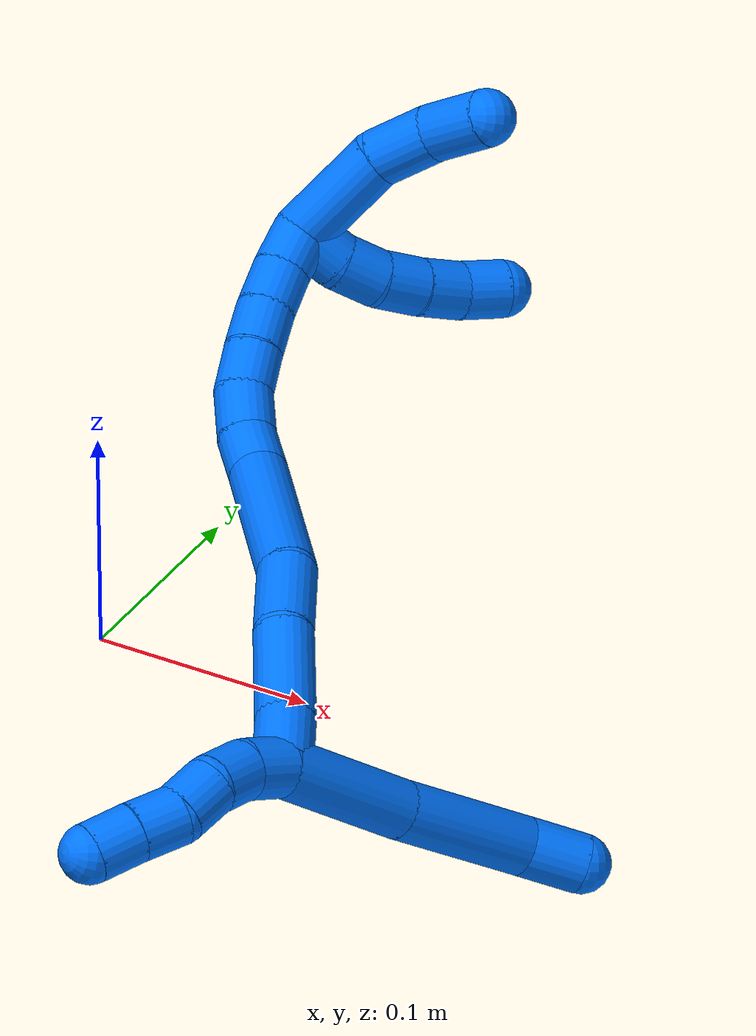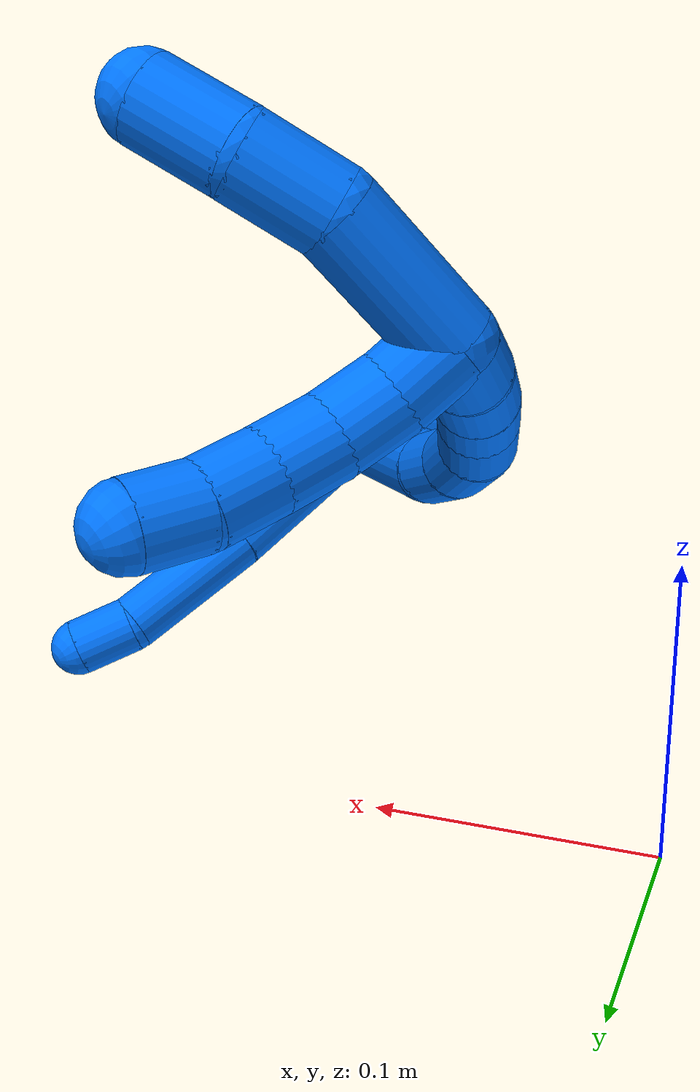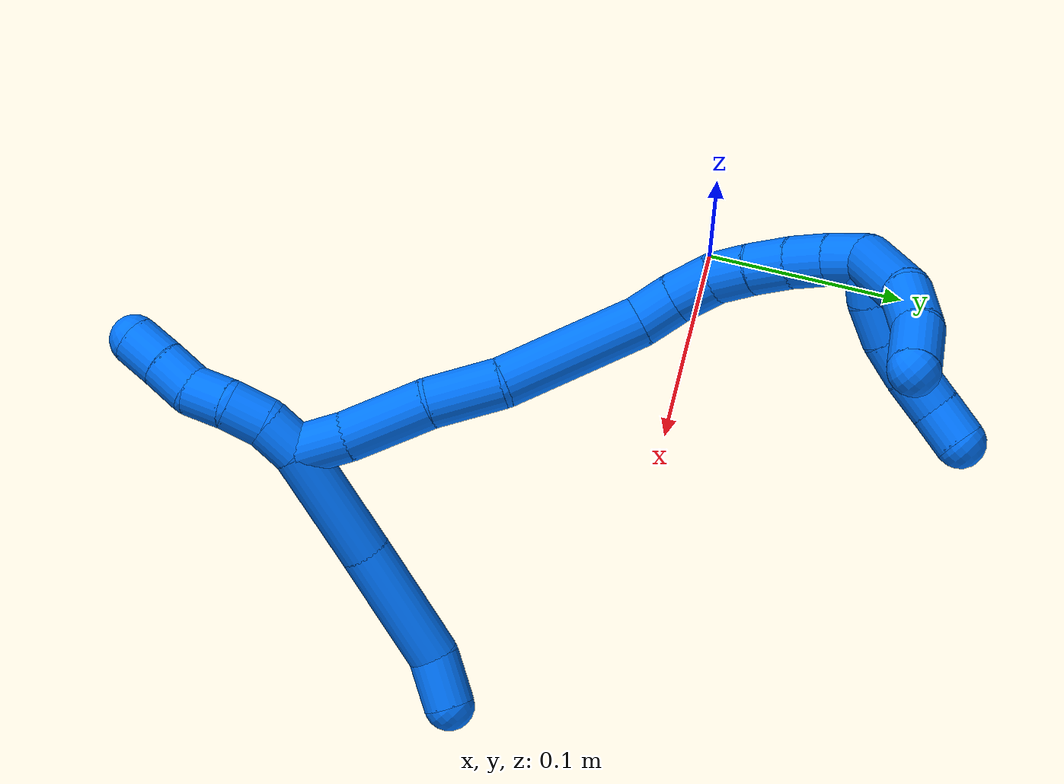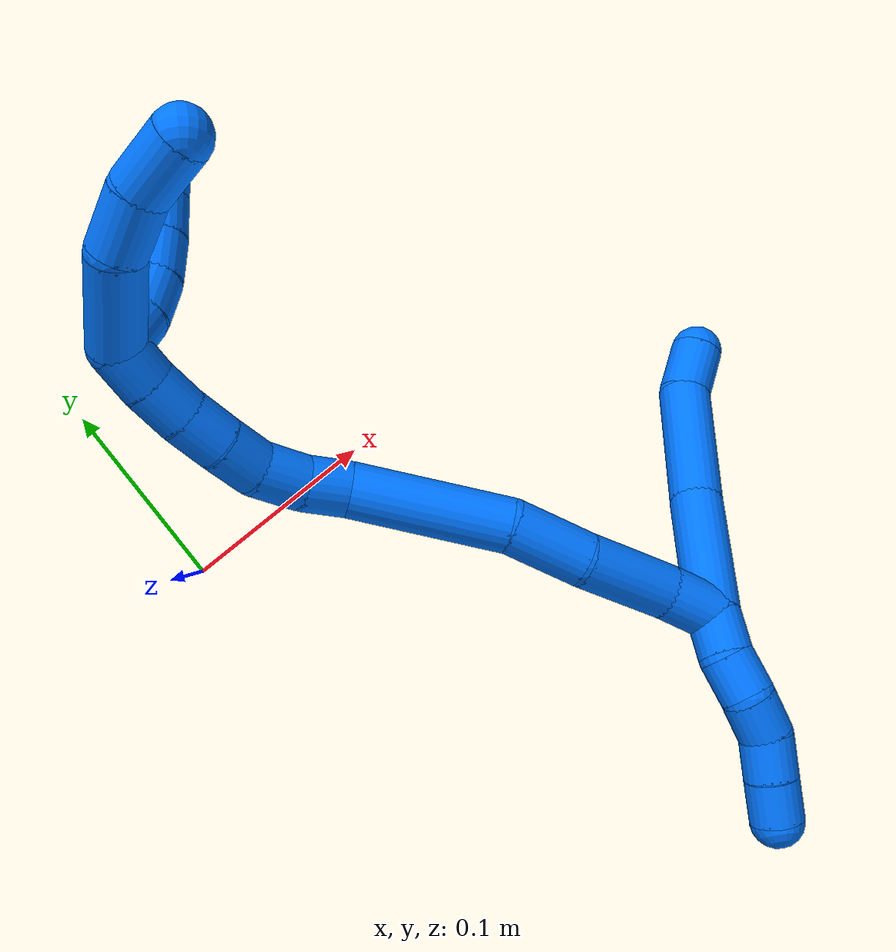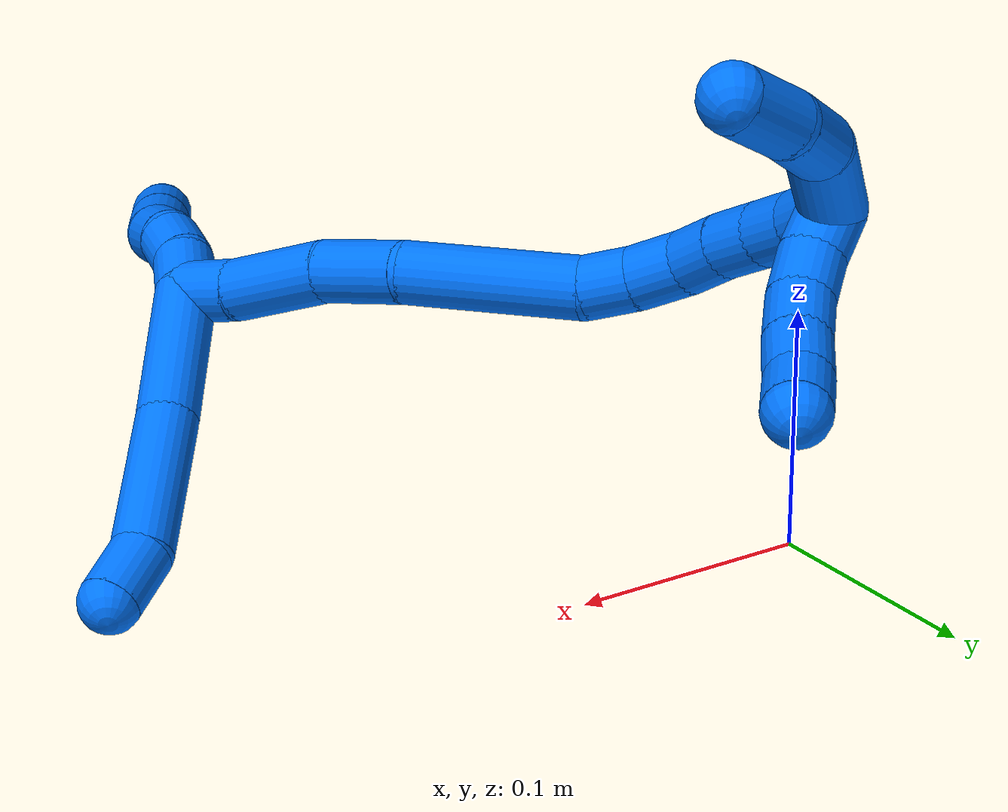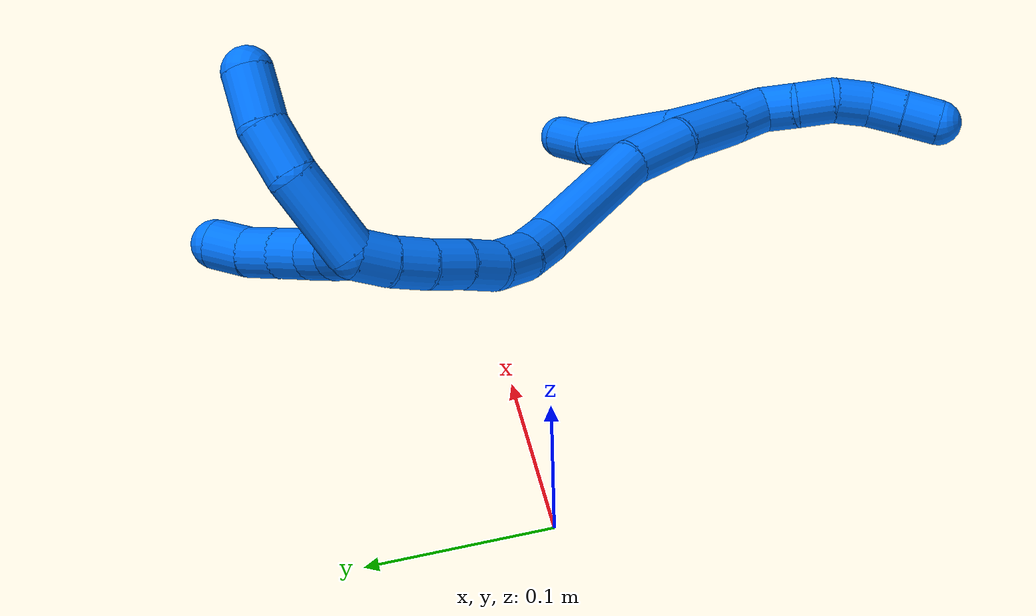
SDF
<sdf version="1.7">
 <world name="default">
  <model name="14">
   <static>0</static>
   <link name="14">
    <collision name="collision-cylinder-e_1_2_8">
     <pose>-0.004023 -0.007659 -0.029432 2.88703 -0.131528 -0.950572</pose>
     <geometry><cylinder><radius>0.0125</radius><length>0.061355</length></cylinder></geometry>
     <surface>
      <friction><ode><mu>1.16</mu><mu2>1.16</mu2><slip1>0</slip1><slip2>0</slip2></ode></friction>
      <contact><ode><kp>1e+06</kp><kd>1</kd><max_vel>0</max_vel><min_depth>0.001</min_depth></ode></contact>
     </surface>
    </collision>
    <visual name="visual-cylinder-e_1_2_8">
     <pose>-0.004023 -0.007659 -0.029432 2.88703 -0.131528 -0.950572</pose>
     <geometry><cylinder><radius>0.0125</radius><length>0.061355</length></cylinder></geometry>
     <material><ambient>0 0.462745 1 1</ambient></material>
    </visual>
    <collision name="collision-cylinder-e_2_8_9">
     <pose>-0.010321 -0.022529 -0.089355 2.90933 -0.072448 -0.602413</pose>
     <geometry><cylinder><radius>0.0125</radius><length>0.062827</length></cylinder></geometry>
     <surface>
      <friction><ode><mu>1.16</mu><mu2>1.16</mu2><slip1>0</slip1><slip2>0</slip2></ode></friction>
      <contact><ode><kp>1e+06</kp><kd>1</kd><max_vel>0</max_vel><min_depth>0.001</min_depth></ode></contact>
     </surface>
    </collision>
    <visual name="visual-cylinder-e_2_8_9">
     <pose>-0.010321 -0.022529 -0.089355 2.90933 -0.072448 -0.602413</pose>
     <geometry><cylinder><radius>0.0125</radius><length>0.062827</length></cylinder></geometry>
     <material><ambient>0 0.462745 1 1</ambient></material>
    </visual>
    <collision name="collision-cylinder-e_3_9_6">
     <pose>-0.009864 -0.03459 -0.131492 2.74709 0.213121 0.982867</pose>
     <geometry><cylinder><radius>0.0125</radius><length>0.025818</length></cylinder></geometry>
     <surface>
      <friction><ode><mu>1.16</mu><mu2>1.16</mu2><slip1>0</slip1><slip2>0</slip2></ode></friction>
      <contact><ode><kp>1e+06</kp><kd>1</kd><max_vel>0</max_vel><min_depth>0.001</min_depth></ode></contact>
     </surface>
    </collision>
    <visual name="visual-cylinder-e_3_9_6">
     <pose>-0.009864 -0.03459 -0.131492 2.74709 0.213121 0.982867</pose>
     <geometry><cylinder><radius>0.0125</radius><length>0.025818</length></cylinder></geometry>
     <material><ambient>0 0.462745 1 1</ambient></material>
    </visual>
    <collision name="collision-cylinder-e_1_2_10">
     <pose>0.00055 -0.000704 0.00996 0.070593 0.055041 0.001944</pose>
     <geometry><cylinder><radius>0.0125</radius><length>0.02</length></cylinder></geometry>
     <surface>
      <friction><ode><mu>1.16</mu><mu2>1.16</mu2><slip1>0</slip1><slip2>0</slip2></ode></friction>
      <contact><ode><kp>1e+06</kp><kd>1</kd><max_vel>0</max_vel><min_depth>0.001</min_depth></ode></contact>
     </surface>
    </collision>
    <visual name="visual-cylinder-e_1_2_10">
     <pose>0.00055 -0.000704 0.00996 0.070593 0.055041 0.001944</pose>
     <geometry><cylinder><radius>0.0125</radius><length>0.02</length></cylinder></geometry>
     <material><ambient>0 0.462745 1 1</ambient></material>
    </visual>
    <collision name="collision-cylinder-e_2_10_11">
     <pose>0.001973 -0.004966 0.029225 0.365197 0.087366 0.016142</pose>
     <geometry><cylinder><radius>0.0125</radius><length>0.02</length></cylinder></geometry>
     <surface>
      <friction><ode><mu>1.16</mu><mu2>1.16</mu2><slip1>0</slip1><slip2>0</slip2></ode></friction>
      <contact><ode><kp>1e+06</kp><kd>1</kd><max_vel>0</max_vel><min_depth>0.001</min_depth></ode></contact>
     </surface>
    </collision>
    <visual name="visual-cylinder-e_2_10_11">
     <pose>0.001973 -0.004966 0.029225 0.365197 0.087366 0.016142</pose>
     <geometry><cylinder><radius>0.0125</radius><length>0.02</length></cylinder></geometry>
     <material><ambient>0 0.462745 1 1</ambient></material>
    </visual>
    <collision name="collision-cylinder-e_3_11_12">
     <pose>0.001306 -0.014092 0.046693 0.598601 -0.154561 -0.047779</pose>
     <geometry><cylinder><radius>0.0125</radius><length>0.02</length></cylinder></geometry>
     <surface>
      <friction><ode><mu>1.16</mu><mu2>1.16</mu2><slip1>0</slip1><slip2>0</slip2></ode></friction>
      <contact><ode><kp>1e+06</kp><kd>1</kd><max_vel>0</max_vel><min_depth>0.001</min_depth></ode></contact>
     </surface>
    </collision>
    <visual name="visual-cylinder-e_3_11_12">
     <pose>0.001306 -0.014092 0.046693 0.598601 -0.154561 -0.047779</pose>
     <geometry><cylinder><radius>0.0125</radius><length>0.02</length></cylinder></geometry>
     <material><ambient>0 0.462745 1 1</ambient></material>
    </visual>
    <collision name="collision-cylinder-e_4_12_13">
     <pose>-0.003203 -0.022309 0.064029 0.281163 -0.301473 -0.042982</pose>
     <geometry><cylinder><radius>0.0125</radius><length>0.02</length></cylinder></geometry>
     <surface>
      <friction><ode><mu>1.16</mu><mu2>1.16</mu2><slip1>0</slip1><slip2>0</slip2></ode></friction>
      <contact><ode><kp>1e+06</kp><kd>1</kd><max_vel>0</max_vel><min_depth>0.001</min_depth></ode></contact>
     </surface>
    </collision>
    <visual name="visual-cylinder-e_4_12_13">
     <pose>-0.003203 -0.022309 0.064029 0.281163 -0.301473 -0.042982</pose>
     <geometry><cylinder><radius>0.0125</radius><length>0.02</length></cylinder></geometry>
     <material><ambient>0 0.462745 1 1</ambient></material>
    </visual>
    <collision name="collision-cylinder-e_5_13_5">
     <pose>-0.009353 -0.028036 0.082171 0.330581 -0.323661 -0.054454</pose>
     <geometry><cylinder><radius>0.0125</radius><length>0.02</length></cylinder></geometry>
     <surface>
      <friction><ode><mu>1.16</mu><mu2>1.16</mu2><slip1>0</slip1><slip2>0</slip2></ode></friction>
      <contact><ode><kp>1e+06</kp><kd>1</kd><max_vel>0</max_vel><min_depth>0.001</min_depth></ode></contact>
     </surface>
    </collision>
    <visual name="visual-cylinder-e_5_13_5">
     <pose>-0.009353 -0.028036 0.082171 0.330581 -0.323661 -0.054454</pose>
     <geometry><cylinder><radius>0.0125</radius><length>0.02</length></cylinder></geometry>
     <material><ambient>0 0.462745 1 1</ambient></material>
    </visual>
    <collision name="collision-cylinder-e_1_2_14">
     <pose>-0.003348 0.010966 -0.005509 -2.03632 -0.266345 0.427784</pose>
     <geometry><cylinder><radius>0.0125</radius><length>0.025442</length></cylinder></geometry>
     <surface>
      <friction><ode><mu>1.16</mu><mu2>1.16</mu2><slip1>0</slip1><slip2>0</slip2></ode></friction>
      <contact><ode><kp>1e+06</kp><kd>1</kd><max_vel>0</max_vel><min_depth>0.001</min_depth></ode></contact>
     </surface>
    </collision>
    <visual name="visual-cylinder-e_1_2_14">
     <pose>-0.003348 0.010966 -0.005509 -2.03632 -0.266345 0.427784</pose>
     <geometry><cylinder><radius>0.0125</radius><length>0.025442</length></cylinder></geometry>
     <material><ambient>0 0.462745 1 1</ambient></material>
    </visual>
    <collision name="collision-cylinder-e_2_14_15">
     <pose>-0.010914 0.042127 -0.018091 -1.90768 -0.194598 0.273495</pose>
     <geometry><cylinder><radius>0.0125</radius><length>0.043618</length></cylinder></geometry>
     <surface>
      <friction><ode><mu>1.16</mu><mu2>1.16</mu2><slip1>0</slip1><slip2>0</slip2></ode></friction>
      <contact><ode><kp>1e+06</kp><kd>1</kd><max_vel>0</max_vel><min_depth>0.001</min_depth></ode></contact>
     </surface>
    </collision>
    <visual name="visual-cylinder-e_2_14_15">
     <pose>-0.010914 0.042127 -0.018091 -1.90768 -0.194598 0.273495</pose>
     <geometry><cylinder><radius>0.0125</radius><length>0.043618</length></cylinder></geometry>
     <material><ambient>0 0.462745 1 1</ambient></material>
    </visual>
    <collision name="collision-cylinder-e_3_15_16">
     <pose>-0.020578 0.077506 -0.033252 -2.06027 -0.306638 0.503882</pose>
     <geometry><cylinder><radius>0.0125</radius><length>0.036092</length></cylinder></geometry>
     <surface>
      <friction><ode><mu>1.16</mu><mu2>1.16</mu2><slip1>0</slip1><slip2>0</slip2></ode></friction>
      <contact><ode><kp>1e+06</kp><kd>1</kd><max_vel>0</max_vel><min_depth>0.001</min_depth></ode></contact>
     </surface>
    </collision>
    <visual name="visual-cylinder-e_3_15_16">
     <pose>-0.020578 0.077506 -0.033252 -2.06027 -0.306638 0.503882</pose>
     <geometry><cylinder><radius>0.0125</radius><length>0.036092</length></cylinder></geometry>
     <material><ambient>0 0.462745 1 1</ambient></material>
    </visual>
    <collision name="collision-cylinder-e_4_16_17">
     <pose>-0.044562 0.121299 -0.05312 -1.96137 -0.539792 0.783464</pose>
     <geometry><cylinder><radius>0.0125</radius><length>0.072133</length></cylinder></geometry>
     <surface>
      <friction><ode><mu>1.16</mu><mu2>1.16</mu2><slip1>0</slip1><slip2>0</slip2></ode></friction>
      <contact><ode><kp>1e+06</kp><kd>1</kd><max_vel>0</max_vel><min_depth>0.001</min_depth></ode></contact>
     </surface>
    </collision>
    <visual name="visual-cylinder-e_4_16_17">
     <pose>-0.044562 0.121299 -0.05312 -1.96137 -0.539792 0.783464</pose>
     <geometry><cylinder><radius>0.0125</radius><length>0.072133</length></cylinder></geometry>
     <material><ambient>0 0.462745 1 1</ambient></material>
    </visual>
    <collision name="collision-cylinder-e_5_17_18">
     <pose>-0.06665 0.159284 -0.066512 -1.74118 -0.357227 0.42212</pose>
     <geometry><cylinder><radius>0.0125</radius><length>0.020312</length></cylinder></geometry>
     <surface>
      <friction><ode><mu>1.16</mu><mu2>1.16</mu2><slip1>0</slip1><slip2>0</slip2></ode></friction>
      <contact><ode><kp>1e+06</kp><kd>1</kd><max_vel>0</max_vel><min_depth>0.001</min_depth></ode></contact>
     </surface>
    </collision>
    <visual name="visual-cylinder-e_5_17_18">
     <pose>-0.06665 0.159284 -0.066512 -1.74118 -0.357227 0.42212</pose>
     <geometry><cylinder><radius>0.0125</radius><length>0.020312</length></cylinder></geometry>
     <material><ambient>0 0.462745 1 1</ambient></material>
    </visual>
    <collision name="collision-cylinder-e_6_18_19">
     <pose>-0.071837 0.179313 -0.070767 -1.81388 -0.148005 0.188973</pose>
     <geometry><cylinder><radius>0.0125</radius><length>0.022192</length></cylinder></geometry>
     <surface>
      <friction><ode><mu>1.16</mu><mu2>1.16</mu2><slip1>0</slip1><slip2>0</slip2></ode></friction>
      <contact><ode><kp>1e+06</kp><kd>1</kd><max_vel>0</max_vel><min_depth>0.001</min_depth></ode></contact>
     </surface>
    </collision>
    <visual name="visual-cylinder-e_6_18_19">
     <pose>-0.071837 0.179313 -0.070767 -1.81388 -0.148005 0.188973</pose>
     <geometry><cylinder><radius>0.0125</radius><length>0.022192</length></cylinder></geometry>
     <material><ambient>0 0.462745 1 1</ambient></material>
    </visual>
    <collision name="collision-cylinder-e_7_19_20">
     <pose>-0.072339 0.199142 -0.07736 -1.97741 0.11307 -0.171559</pose>
     <geometry><cylinder><radius>0.0125</radius><length>0.020111</length></cylinder></geometry>
     <surface>
      <friction><ode><mu>1.16</mu><mu2>1.16</mu2><slip1>0</slip1><slip2>0</slip2></ode></friction>
      <contact><ode><kp>1e+06</kp><kd>1</kd><max_vel>0</max_vel><min_depth>0.001</min_depth></ode></contact>
     </surface>
    </collision>
    <visual name="visual-cylinder-e_7_19_20">
     <pose>-0.072339 0.199142 -0.07736 -1.97741 0.11307 -0.171559</pose>
     <geometry><cylinder><radius>0.0125</radius><length>0.020111</length></cylinder></geometry>
     <material><ambient>0 0.462745 1 1</ambient></material>
    </visual>
    <collision name="collision-cylinder-e_8_20_21">
     <pose>-0.070569 0.21716 -0.085986 -2.05714 0.063505 -0.105348</pose>
     <geometry><cylinder><radius>0.0125</radius><length>0.020043</length></cylinder></geometry>
     <surface>
      <friction><ode><mu>1.16</mu><mu2>1.16</mu2><slip1>0</slip1><slip2>0</slip2></ode></friction>
      <contact><ode><kp>1e+06</kp><kd>1</kd><max_vel>0</max_vel><min_depth>0.001</min_depth></ode></contact>
     </surface>
    </collision>
    <visual name="visual-cylinder-e_8_20_21">
     <pose>-0.070569 0.21716 -0.085986 -2.05714 0.063505 -0.105348</pose>
     <geometry><cylinder><radius>0.0125</radius><length>0.020043</length></cylinder></geometry>
     <material><ambient>0 0.462745 1 1</ambient></material>
    </visual>
    <collision name="collision-cylinder-e_9_21_22">
     <pose>-0.068622 0.234459 -0.095873 -2.12305 0.131125 -0.234084</pose>
     <geometry><cylinder><radius>0.0125</radius><length>0.020041</length></cylinder></geometry>
     <surface>
      <friction><ode><mu>1.16</mu><mu2>1.16</mu2><slip1>0</slip1><slip2>0</slip2></ode></friction>
      <contact><ode><kp>1e+06</kp><kd>1</kd><max_vel>0</max_vel><min_depth>0.001</min_depth></ode></contact>
     </surface>
    </collision>
    <visual name="visual-cylinder-e_9_21_22">
     <pose>-0.068622 0.234459 -0.095873 -2.12305 0.131125 -0.234084</pose>
     <geometry><cylinder><radius>0.0125</radius><length>0.020041</length></cylinder></geometry>
     <material><ambient>0 0.462745 1 1</ambient></material>
    </visual>
    <collision name="collision-cylinder-e_10_22_1">
     <pose>-0.064766 0.250935 -0.106507 -2.16544 0.25722 -0.477864</pose>
     <geometry><cylinder><radius>0.0125</radius><length>0.020016</length></cylinder></geometry>
     <surface>
      <friction><ode><mu>1.16</mu><mu2>1.16</mu2><slip1>0</slip1><slip2>0</slip2></ode></friction>
      <contact><ode><kp>1e+06</kp><kd>1</kd><max_vel>0</max_vel><min_depth>0.001</min_depth></ode></contact>
     </surface>
    </collision>
    <visual name="visual-cylinder-e_10_22_1">
     <pose>-0.064766 0.250935 -0.106507 -2.16544 0.25722 -0.477864</pose>
     <geometry><cylinder><radius>0.0125</radius><length>0.020016</length></cylinder></geometry>
     <material><ambient>0 0.462745 1 1</ambient></material>
    </visual>
    <collision name="collision-cylinder-e_1_1_23">
     <pose>-0.062586 0.252899 -0.119881 2.49098 -0.036617 -0.108469</pose>
     <geometry><cylinder><radius>0.0125</radius><length>0.02</length></cylinder></geometry>
     <surface>
      <friction><ode><mu>1.16</mu><mu2>1.16</mu2><slip1>0</slip1><slip2>0</slip2></ode></friction>
      <contact><ode><kp>1e+06</kp><kd>1</kd><max_vel>0</max_vel><min_depth>0.001</min_depth></ode></contact>
     </surface>
    </collision>
    <visual name="visual-cylinder-e_1_1_23">
     <pose>-0.062586 0.252899 -0.119881 2.49098 -0.036617 -0.108469</pose>
     <geometry><cylinder><radius>0.0125</radius><length>0.02</length></cylinder></geometry>
     <material><ambient>0 0.462745 1 1</ambient></material>
    </visual>
    <collision name="collision-cylinder-e_2_23_24">
     <pose>-0.062789 0.243022 -0.137071 2.7491 0.016368 0.082288</pose>
     <geometry><cylinder><radius>0.0125</radius><length>0.02</length></cylinder></geometry>
     <surface>
      <friction><ode><mu>1.16</mu><mu2>1.16</mu2><slip1>0</slip1><slip2>0</slip2></ode></friction>
      <contact><ode><kp>1e+06</kp><kd>1</kd><max_vel>0</max_vel><min_depth>0.001</min_depth></ode></contact>
     </surface>
    </collision>
    <visual name="visual-cylinder-e_2_23_24">
     <pose>-0.062789 0.243022 -0.137071 2.7491 0.016368 0.082288</pose>
     <geometry><cylinder><radius>0.0125</radius><length>0.02</length></cylinder></geometry>
     <material><ambient>0 0.462745 1 1</ambient></material>
    </visual>
    <collision name="collision-cylinder-e_3_24_25">
     <pose>-0.062122 0.237436 -0.15614 2.96426 0.050324 0.551756</pose>
     <geometry><cylinder><radius>0.0125</radius><length>0.02</length></cylinder></geometry>
     <surface>
      <friction><ode><mu>1.16</mu><mu2>1.16</mu2><slip1>0</slip1><slip2>0</slip2></ode></friction>
      <contact><ode><kp>1e+06</kp><kd>1</kd><max_vel>0</max_vel><min_depth>0.001</min_depth></ode></contact>
     </surface>
    </collision>
    <visual name="visual-cylinder-e_3_24_25">
     <pose>-0.062122 0.237436 -0.15614 2.96426 0.050324 0.551756</pose>
     <geometry><cylinder><radius>0.0125</radius><length>0.02</length></cylinder></geometry>
     <material><ambient>0 0.462745 1 1</ambient></material>
    </visual>
    <collision name="collision-cylinder-e_4_25_26">
     <pose>-0.061077 0.234873 -0.175924 3.06128 0.054245 1.18786</pose>
     <geometry><cylinder><radius>0.0125</radius><length>0.02</length></cylinder></geometry>
     <surface>
      <friction><ode><mu>1.16</mu><mu2>1.16</mu2><slip1>0</slip1><slip2>0</slip2></ode></friction>
      <contact><ode><kp>1e+06</kp><kd>1</kd><max_vel>0</max_vel><min_depth>0.001</min_depth></ode></contact>
     </surface>
    </collision>
    <visual name="visual-cylinder-e_4_25_26">
     <pose>-0.061077 0.234873 -0.175924 3.06128 0.054245 1.18786</pose>
     <geometry><cylinder><radius>0.0125</radius><length>0.02</length></cylinder></geometry>
     <material><ambient>0 0.462745 1 1</ambient></material>
    </visual>
    <collision name="collision-cylinder-e_5_26_4">
     <pose>-0.058208 0.233895 -0.195601 3.12332 0.234793 2.98695</pose>
     <geometry><cylinder><radius>0.0125</radius><length>0.02</length></cylinder></geometry>
     <surface>
      <friction><ode><mu>1.16</mu><mu2>1.16</mu2><slip1>0</slip1><slip2>0</slip2></ode></friction>
      <contact><ode><kp>1e+06</kp><kd>1</kd><max_vel>0</max_vel><min_depth>0.001</min_depth></ode></contact>
     </surface>
    </collision>
    <visual name="visual-cylinder-e_5_26_4">
     <pose>-0.058208 0.233895 -0.195601 3.12332 0.234793 2.98695</pose>
     <geometry><cylinder><radius>0.0125</radius><length>0.02</length></cylinder></geometry>
     <material><ambient>0 0.462745 1 1</ambient></material>
    </visual>
    <collision name="collision-cylinder-e_1_1_27">
     <pose>-0.043519 0.268195 -0.121022 -2.34798 0.964571 -1.7916</pose>
     <geometry><cylinder><radius>0.0125</radius><length>0.045513</length></cylinder></geometry>
     <surface>
      <friction><ode><mu>1.16</mu><mu2>1.16</mu2><slip1>0</slip1><slip2>0</slip2></ode></friction>
      <contact><ode><kp>1e+06</kp><kd>1</kd><max_vel>0</max_vel><min_depth>0.001</min_depth></ode></contact>
     </surface>
    </collision>
    <visual name="visual-cylinder-e_1_1_27">
     <pose>-0.043519 0.268195 -0.121022 -2.34798 0.964571 -1.7916</pose>
     <geometry><cylinder><radius>0.0125</radius><length>0.045513</length></cylinder></geometry>
     <material><ambient>0 0.462745 1 1</ambient></material>
    </visual>
    <collision name="collision-cylinder-e_2_27_28">
     <pose>-0.013063 0.278487 -0.136627 -2.98197 1.05939 -2.87006</pose>
     <geometry><cylinder><radius>0.0125</radius><length>0.026958</length></cylinder></geometry>
     <surface>
      <friction><ode><mu>1.16</mu><mu2>1.16</mu2><slip1>0</slip1><slip2>0</slip2></ode></friction>
      <contact><ode><kp>1e+06</kp><kd>1</kd><max_vel>0</max_vel><min_depth>0.001</min_depth></ode></contact>
     </surface>
    </collision>
    <visual name="visual-cylinder-e_2_27_28">
     <pose>-0.013063 0.278487 -0.136627 -2.98197 1.05939 -2.87006</pose>
     <geometry><cylinder><radius>0.0125</radius><length>0.026958</length></cylinder></geometry>
     <material><ambient>0 0.462745 1 1</ambient></material>
    </visual>
    <collision name="collision-cylinder-e_3_28_3">
     <pose>0.011569 0.277697 -0.14764 2.75362 1.20982 2.58787</pose>
     <geometry><cylinder><radius>0.0125</radius><length>0.027529</length></cylinder></geometry>
     <surface>
      <friction><ode><mu>1.16</mu><mu2>1.16</mu2><slip1>0</slip1><slip2>0</slip2></ode></friction>
      <contact><ode><kp>1e+06</kp><kd>1</kd><max_vel>0</max_vel><min_depth>0.001</min_depth></ode></contact>
     </surface>
    </collision>
    <visual name="visual-cylinder-e_3_28_3">
     <pose>0.011569 0.277697 -0.14764 2.75362 1.20982 2.58787</pose>
     <geometry><cylinder><radius>0.0125</radius><length>0.027529</length></cylinder></geometry>
     <material><ambient>0 0.462745 1 1</ambient></material>
    </visual>
    <collision name="collision-sphere-3">
     <pose>0.024446 0.275858 -0.15214 0 -0 0</pose>
     <geometry><sphere><radius>0.0125</radius></sphere></geometry>
     <surface>
      <friction><ode><mu>1.16</mu><mu2>1.16</mu2><slip1>0</slip1><slip2>0</slip2></ode></friction>
      <contact><ode><kp>1e+06</kp><kd>1</kd><max_vel>0</max_vel><min_depth>0.001</min_depth></ode></contact>
     </surface>
    </collision>
    <visual name="visual-sphere-3">
     <pose>0.024446 0.275858 -0.15214 0 -0 0</pose>
     <geometry><sphere><radius>0.0125</radius></sphere></geometry>
     <material><ambient>0 0.462745 1 1</ambient></material>
    </visual>
    <collision name="collision-sphere-28">
     <pose>-0.001309 0.279536 -0.14314 0 -0 0</pose>
     <geometry><sphere><radius>0.0125</radius></sphere></geometry>
     <surface>
      <friction><ode><mu>1.16</mu><mu2>1.16</mu2><slip1>0</slip1><slip2>0</slip2></ode></friction>
      <contact><ode><kp>1e+06</kp><kd>1</kd><max_vel>0</max_vel><min_depth>0.001</min_depth></ode></contact>
     </surface>
    </collision>
    <visual name="visual-sphere-28">
     <pose>-0.001309 0.279536 -0.14314 0 -0 0</pose>
     <geometry><sphere><radius>0.0125</radius></sphere></geometry>
     <material><ambient>0 0.462745 1 1</ambient></material>
    </visual>
    <collision name="collision-sphere-27">
     <pose>-0.024818 0.277439 -0.130114 0 -0 0</pose>
     <geometry><sphere><radius>0.0125</radius></sphere></geometry>
     <surface>
      <friction><ode><mu>1.16</mu><mu2>1.16</mu2><slip1>0</slip1><slip2>0</slip2></ode></friction>
      <contact><ode><kp>1e+06</kp><kd>1</kd><max_vel>0</max_vel><min_depth>0.001</min_depth></ode></contact>
     </surface>
    </collision>
    <visual name="visual-sphere-27">
     <pose>-0.024818 0.277439 -0.130114 0 -0 0</pose>
     <geometry><sphere><radius>0.0125</radius></sphere></geometry>
     <material><ambient>0 0.462745 1 1</ambient></material>
    </visual>
    <collision name="collision-sphere-4">
     <pose>-0.055882 0.233717 -0.205325 0 -0 0</pose>
     <geometry><sphere><radius>0.0125</radius></sphere></geometry>
     <surface>
      <friction><ode><mu>1.16</mu><mu2>1.16</mu2><slip1>0</slip1><slip2>0</slip2></ode></friction>
      <contact><ode><kp>1e+06</kp><kd>1</kd><max_vel>0</max_vel><min_depth>0.001</min_depth></ode></contact>
     </surface>
    </collision>
    <visual name="visual-sphere-4">
     <pose>-0.055882 0.233717 -0.205325 0 -0 0</pose>
     <geometry><sphere><radius>0.0125</radius></sphere></geometry>
     <material><ambient>0 0.462745 1 1</ambient></material>
    </visual>
    <collision name="collision-sphere-26">
     <pose>-0.060535 0.234072 -0.185877 0 -0 0</pose>
     <geometry><sphere><radius>0.0125</radius></sphere></geometry>
     <surface>
      <friction><ode><mu>1.16</mu><mu2>1.16</mu2><slip1>0</slip1><slip2>0</slip2></ode></friction>
      <contact><ode><kp>1e+06</kp><kd>1</kd><max_vel>0</max_vel><min_depth>0.001</min_depth></ode></contact>
     </surface>
    </collision>
    <visual name="visual-sphere-26">
     <pose>-0.060535 0.234072 -0.185877 0 -0 0</pose>
     <geometry><sphere><radius>0.0125</radius></sphere></geometry>
     <material><ambient>0 0.462745 1 1</ambient></material>
    </visual>
    <collision name="collision-sphere-25">
     <pose>-0.061619 0.235674 -0.165971 0 -0 0</pose>
     <geometry><sphere><radius>0.0125</radius></sphere></geometry>
     <surface>
      <friction><ode><mu>1.16</mu><mu2>1.16</mu2><slip1>0</slip1><slip2>0</slip2></ode></friction>
      <contact><ode><kp>1e+06</kp><kd>1</kd><max_vel>0</max_vel><min_depth>0.001</min_depth></ode></contact>
     </surface>
    </collision>
    <visual name="visual-sphere-25">
     <pose>-0.061619 0.235674 -0.165971 0 -0 0</pose>
     <geometry><sphere><radius>0.0125</radius></sphere></geometry>
     <material><ambient>0 0.462745 1 1</ambient></material>
    </visual>
    <collision name="collision-sphere-24">
     <pose>-0.062625 0.239198 -0.146309 0 -0 0</pose>
     <geometry><sphere><radius>0.0125</radius></sphere></geometry>
     <surface>
      <friction><ode><mu>1.16</mu><mu2>1.16</mu2><slip1>0</slip1><slip2>0</slip2></ode></friction>
      <contact><ode><kp>1e+06</kp><kd>1</kd><max_vel>0</max_vel><min_depth>0.001</min_depth></ode></contact>
     </surface>
    </collision>
    <visual name="visual-sphere-24">
     <pose>-0.062625 0.239198 -0.146309 0 -0 0</pose>
     <geometry><sphere><radius>0.0125</radius></sphere></geometry>
     <material><ambient>0 0.462745 1 1</ambient></material>
    </visual>
    <collision name="collision-sphere-23">
     <pose>-0.062952 0.246847 -0.127833 0 -0 0</pose>
     <geometry><sphere><radius>0.0125</radius></sphere></geometry>
     <surface>
      <friction><ode><mu>1.16</mu><mu2>1.16</mu2><slip1>0</slip1><slip2>0</slip2></ode></friction>
      <contact><ode><kp>1e+06</kp><kd>1</kd><max_vel>0</max_vel><min_depth>0.001</min_depth></ode></contact>
     </surface>
    </collision>
    <visual name="visual-sphere-23">
     <pose>-0.062952 0.246847 -0.127833 0 -0 0</pose>
     <geometry><sphere><radius>0.0125</radius></sphere></geometry>
     <material><ambient>0 0.462745 1 1</ambient></material>
    </visual>
    <collision name="collision-sphere-1">
     <pose>-0.06222 0.258952 -0.111929 0 -0 0</pose>
     <geometry><sphere><radius>0.0125</radius></sphere></geometry>
     <surface>
      <friction><ode><mu>1.16</mu><mu2>1.16</mu2><slip1>0</slip1><slip2>0</slip2></ode></friction>
      <contact><ode><kp>1e+06</kp><kd>1</kd><max_vel>0</max_vel><min_depth>0.001</min_depth></ode></contact>
     </surface>
    </collision>
    <visual name="visual-sphere-1">
     <pose>-0.06222 0.258952 -0.111929 0 -0 0</pose>
     <geometry><sphere><radius>0.0125</radius></sphere></geometry>
     <material><ambient>0 0.462745 1 1</ambient></material>
    </visual>
    <collision name="collision-sphere-22">
     <pose>-0.067312 0.242917 -0.101084 0 -0 0</pose>
     <geometry><sphere><radius>0.0125</radius></sphere></geometry>
     <surface>
      <friction><ode><mu>1.16</mu><mu2>1.16</mu2><slip1>0</slip1><slip2>0</slip2></ode></friction>
      <contact><ode><kp>1e+06</kp><kd>1</kd><max_vel>0</max_vel><min_depth>0.001</min_depth></ode></contact>
     </surface>
    </collision>
    <visual name="visual-sphere-22">
     <pose>-0.067312 0.242917 -0.101084 0 -0 0</pose>
     <geometry><sphere><radius>0.0125</radius></sphere></geometry>
     <material><ambient>0 0.462745 1 1</ambient></material>
    </visual>
    <collision name="collision-sphere-21">
     <pose>-0.069933 0.226002 -0.090661 0 -0 0</pose>
     <geometry><sphere><radius>0.0125</radius></sphere></geometry>
     <surface>
      <friction><ode><mu>1.16</mu><mu2>1.16</mu2><slip1>0</slip1><slip2>0</slip2></ode></friction>
      <contact><ode><kp>1e+06</kp><kd>1</kd><max_vel>0</max_vel><min_depth>0.001</min_depth></ode></contact>
     </surface>
    </collision>
    <visual name="visual-sphere-21">
     <pose>-0.069933 0.226002 -0.090661 0 -0 0</pose>
     <geometry><sphere><radius>0.0125</radius></sphere></geometry>
     <material><ambient>0 0.462745 1 1</ambient></material>
    </visual>
    <collision name="collision-sphere-11">
     <pose>0.002845 -0.008524 0.03853 0 -0 0</pose>
     <geometry><sphere><radius>0.0125</radius></sphere></geometry>
     <surface>
      <friction><ode><mu>1.16</mu><mu2>1.16</mu2><slip1>0</slip1><slip2>0</slip2></ode></friction>
      <contact><ode><kp>1e+06</kp><kd>1</kd><max_vel>0</max_vel><min_depth>0.001</min_depth></ode></contact>
     </surface>
    </collision>
    <visual name="visual-sphere-11">
     <pose>0.002845 -0.008524 0.03853 0 -0 0</pose>
     <geometry><sphere><radius>0.0125</radius></sphere></geometry>
     <material><ambient>0 0.462745 1 1</ambient></material>
    </visual>
    <collision name="collision-sphere-10">
     <pose>0.0011 -0.001409 0.01992 0 -0 0</pose>
     <geometry><sphere><radius>0.0125</radius></sphere></geometry>
     <surface>
      <friction><ode><mu>1.16</mu><mu2>1.16</mu2><slip1>0</slip1><slip2>0</slip2></ode></friction>
      <contact><ode><kp>1e+06</kp><kd>1</kd><max_vel>0</max_vel><min_depth>0.001</min_depth></ode></contact>
     </surface>
    </collision>
    <visual name="visual-sphere-10">
     <pose>0.0011 -0.001409 0.01992 0 -0 0</pose>
     <geometry><sphere><radius>0.0125</radius></sphere></geometry>
     <material><ambient>0 0.462745 1 1</ambient></material>
    </visual>
    <collision name="collision-sphere-6">
     <pose>-0.007134 -0.039439 -0.14314 0 -0 0</pose>
     <geometry><sphere><radius>0.0125</radius></sphere></geometry>
     <surface>
      <friction><ode><mu>1.16</mu><mu2>1.16</mu2><slip1>0</slip1><slip2>0</slip2></ode></friction>
      <contact><ode><kp>1e+06</kp><kd>1</kd><max_vel>0</max_vel><min_depth>0.001</min_depth></ode></contact>
     </surface>
    </collision>
    <visual name="visual-sphere-6">
     <pose>-0.007134 -0.039439 -0.14314 0 -0 0</pose>
     <geometry><sphere><radius>0.0125</radius></sphere></geometry>
     <material><ambient>0 0.462745 1 1</ambient></material>
    </visual>
    <collision name="collision-sphere-9">
     <pose>-0.012594 -0.02974 -0.119844 0 -0 0</pose>
     <geometry><sphere><radius>0.0125</radius></sphere></geometry>
     <surface>
      <friction><ode><mu>1.16</mu><mu2>1.16</mu2><slip1>0</slip1><slip2>0</slip2></ode></friction>
      <contact><ode><kp>1e+06</kp><kd>1</kd><max_vel>0</max_vel><min_depth>0.001</min_depth></ode></contact>
     </surface>
    </collision>
    <visual name="visual-sphere-9">
     <pose>-0.012594 -0.02974 -0.119844 0 -0 0</pose>
     <geometry><sphere><radius>0.0125</radius></sphere></geometry>
     <material><ambient>0 0.462745 1 1</ambient></material>
    </visual>
    <collision name="collision-sphere-2">
     <geometry><sphere><radius>0.0125</radius></sphere></geometry>
     <surface>
      <friction><ode><mu>1.16</mu><mu2>1.16</mu2><slip1>0</slip1><slip2>0</slip2></ode></friction>
      <contact><ode><kp>1e+06</kp><kd>1</kd><max_vel>0</max_vel><min_depth>0.001</min_depth></ode></contact>
     </surface>
    </collision>
    <visual name="visual-sphere-2">
     <geometry><sphere><radius>0.0125</radius></sphere></geometry>
     <material><ambient>0 0.462745 1 1</ambient></material>
    </visual>
    <collision name="collision-sphere-19">
     <pose>-0.073474 0.189965 -0.073408 0 -0 0</pose>
     <geometry><sphere><radius>0.0125</radius></sphere></geometry>
     <surface>
      <friction><ode><mu>1.16</mu><mu2>1.16</mu2><slip1>0</slip1><slip2>0</slip2></ode></friction>
      <contact><ode><kp>1e+06</kp><kd>1</kd><max_vel>0</max_vel><min_depth>0.001</min_depth></ode></contact>
     </surface>
    </collision>
    <visual name="visual-sphere-19">
     <pose>-0.073474 0.189965 -0.073408 0 -0 0</pose>
     <geometry><sphere><radius>0.0125</radius></sphere></geometry>
     <material><ambient>0 0.462745 1 1</ambient></material>
    </visual>
    <collision name="collision-sphere-8">
     <pose>-0.008047 -0.015317 -0.058865 0 -0 0</pose>
     <geometry><sphere><radius>0.0125</radius></sphere></geometry>
     <surface>
      <friction><ode><mu>1.16</mu><mu2>1.16</mu2><slip1>0</slip1><slip2>0</slip2></ode></friction>
      <contact><ode><kp>1e+06</kp><kd>1</kd><max_vel>0</max_vel><min_depth>0.001</min_depth></ode></contact>
     </surface>
    </collision>
    <visual name="visual-sphere-8">
     <pose>-0.008047 -0.015317 -0.058865 0 -0 0</pose>
     <geometry><sphere><radius>0.0125</radius></sphere></geometry>
     <material><ambient>0 0.462745 1 1</ambient></material>
    </visual>
    <collision name="collision-sphere-12">
     <pose>-0.000234 -0.019659 0.054855 0 -0 0</pose>
     <geometry><sphere><radius>0.0125</radius></sphere></geometry>
     <surface>
      <friction><ode><mu>1.16</mu><mu2>1.16</mu2><slip1>0</slip1><slip2>0</slip2></ode></friction>
      <contact><ode><kp>1e+06</kp><kd>1</kd><max_vel>0</max_vel><min_depth>0.001</min_depth></ode></contact>
     </surface>
    </collision>
    <visual name="visual-sphere-12">
     <pose>-0.000234 -0.019659 0.054855 0 -0 0</pose>
     <geometry><sphere><radius>0.0125</radius></sphere></geometry>
     <material><ambient>0 0.462745 1 1</ambient></material>
    </visual>
    <collision name="collision-sphere-13">
     <pose>-0.006172 -0.024959 0.073203 0 -0 0</pose>
     <geometry><sphere><radius>0.0125</radius></sphere></geometry>
     <surface>
      <friction><ode><mu>1.16</mu><mu2>1.16</mu2><slip1>0</slip1><slip2>0</slip2></ode></friction>
      <contact><ode><kp>1e+06</kp><kd>1</kd><max_vel>0</max_vel><min_depth>0.001</min_depth></ode></contact>
     </surface>
    </collision>
    <visual name="visual-sphere-13">
     <pose>-0.006172 -0.024959 0.073203 0 -0 0</pose>
     <geometry><sphere><radius>0.0125</radius></sphere></geometry>
     <material><ambient>0 0.462745 1 1</ambient></material>
    </visual>
    <collision name="collision-sphere-5">
     <pose>-0.012533 -0.031113 0.091138 0 -0 0</pose>
     <geometry><sphere><radius>0.0125</radius></sphere></geometry>
     <surface>
      <friction><ode><mu>1.16</mu><mu2>1.16</mu2><slip1>0</slip1><slip2>0</slip2></ode></friction>
      <contact><ode><kp>1e+06</kp><kd>1</kd><max_vel>0</max_vel><min_depth>0.001</min_depth></ode></contact>
     </surface>
    </collision>
    <visual name="visual-sphere-5">
     <pose>-0.012533 -0.031113 0.091138 0 -0 0</pose>
     <geometry><sphere><radius>0.0125</radius></sphere></geometry>
     <material><ambient>0 0.462745 1 1</ambient></material>
    </visual>
    <collision name="collision-sphere-14">
     <pose>-0.006696 0.021933 -0.011018 0 -0 0</pose>
     <geometry><sphere><radius>0.0125</radius></sphere></geometry>
     <surface>
      <friction><ode><mu>1.16</mu><mu2>1.16</mu2><slip1>0</slip1><slip2>0</slip2></ode></friction>
      <contact><ode><kp>1e+06</kp><kd>1</kd><max_vel>0</max_vel><min_depth>0.001</min_depth></ode></contact>
     </surface>
    </collision>
    <visual name="visual-sphere-14">
     <pose>-0.006696 0.021933 -0.011018 0 -0 0</pose>
     <geometry><sphere><radius>0.0125</radius></sphere></geometry>
     <material><ambient>0 0.462745 1 1</ambient></material>
    </visual>
    <collision name="collision-sphere-15">
     <pose>-0.015131 0.062322 -0.025164 0 -0 0</pose>
     <geometry><sphere><radius>0.0125</radius></sphere></geometry>
     <surface>
      <friction><ode><mu>1.16</mu><mu2>1.16</mu2><slip1>0</slip1><slip2>0</slip2></ode></friction>
      <contact><ode><kp>1e+06</kp><kd>1</kd><max_vel>0</max_vel><min_depth>0.001</min_depth></ode></contact>
     </surface>
    </collision>
    <visual name="visual-sphere-15">
     <pose>-0.015131 0.062322 -0.025164 0 -0 0</pose>
     <geometry><sphere><radius>0.0125</radius></sphere></geometry>
     <material><ambient>0 0.462745 1 1</ambient></material>
    </visual>
    <collision name="collision-sphere-16">
     <pose>-0.026026 0.09269 -0.041341 0 -0 0</pose>
     <geometry><sphere><radius>0.0125</radius></sphere></geometry>
     <surface>
      <friction><ode><mu>1.16</mu><mu2>1.16</mu2><slip1>0</slip1><slip2>0</slip2></ode></friction>
      <contact><ode><kp>1e+06</kp><kd>1</kd><max_vel>0</max_vel><min_depth>0.001</min_depth></ode></contact>
     </surface>
    </collision>
    <visual name="visual-sphere-16">
     <pose>-0.026026 0.09269 -0.041341 0 -0 0</pose>
     <geometry><sphere><radius>0.0125</radius></sphere></geometry>
     <material><ambient>0 0.462745 1 1</ambient></material>
    </visual>
    <collision name="collision-sphere-17">
     <pose>-0.063099 0.149907 -0.064899 0 -0 0</pose>
     <geometry><sphere><radius>0.0125</radius></sphere></geometry>
     <surface>
      <friction><ode><mu>1.16</mu><mu2>1.16</mu2><slip1>0</slip1><slip2>0</slip2></ode></friction>
      <contact><ode><kp>1e+06</kp><kd>1</kd><max_vel>0</max_vel><min_depth>0.001</min_depth></ode></contact>
     </surface>
    </collision>
    <visual name="visual-sphere-17">
     <pose>-0.063099 0.149907 -0.064899 0 -0 0</pose>
     <geometry><sphere><radius>0.0125</radius></sphere></geometry>
     <material><ambient>0 0.462745 1 1</ambient></material>
    </visual>
    <collision name="collision-sphere-18">
     <pose>-0.070201 0.168661 -0.068125 0 -0 0</pose>
     <geometry><sphere><radius>0.0125</radius></sphere></geometry>
     <surface>
      <friction><ode><mu>1.16</mu><mu2>1.16</mu2><slip1>0</slip1><slip2>0</slip2></ode></friction>
      <contact><ode><kp>1e+06</kp><kd>1</kd><max_vel>0</max_vel><min_depth>0.001</min_depth></ode></contact>
     </surface>
    </collision>
    <visual name="visual-sphere-18">
     <pose>-0.070201 0.168661 -0.068125 0 -0 0</pose>
     <geometry><sphere><radius>0.0125</radius></sphere></geometry>
     <material><ambient>0 0.462745 1 1</ambient></material>
    </visual>
    <collision name="collision-sphere-20">
     <pose>-0.071205 0.208318 -0.081312 0 -0 0</pose>
     <geometry><sphere><radius>0.0125</radius></sphere></geometry>
     <surface>
      <friction><ode><mu>1.16</mu><mu2>1.16</mu2><slip1>0</slip1><slip2>0</slip2></ode></friction>
      <contact><ode><kp>1e+06</kp><kd>1</kd><max_vel>0</max_vel><min_depth>0.001</min_depth></ode></contact>
     </surface>
    </collision>
    <visual name="visual-sphere-20">
     <pose>-0.071205 0.208318 -0.081312 0 -0 0</pose>
     <geometry><sphere><radius>0.0125</radius></sphere></geometry>
     <material><ambient>0 0.462745 1 1</ambient></material>
    </visual>
    <inertial>
     <pose>-0.029976 0.114904 -0.068448 0 -0 0</pose>
     <mass>0.75</mass>
     <inertia>
      <ixx>7.9e-05</ixx>
      <ixy>0</ixy>
      <ixz>0</ixz>
      <iyy>-1.2e-05</iyy>
      <iyz>0</iyz>
      <izz>-4.8e-05</izz>
     </inertia>
    </inertial>
   </link>
   <pose>0.1817 -0.164233 0.094506 1.08704 -0.79177 -0.174618</pose>
  </model>
 </world>
</sdf>
